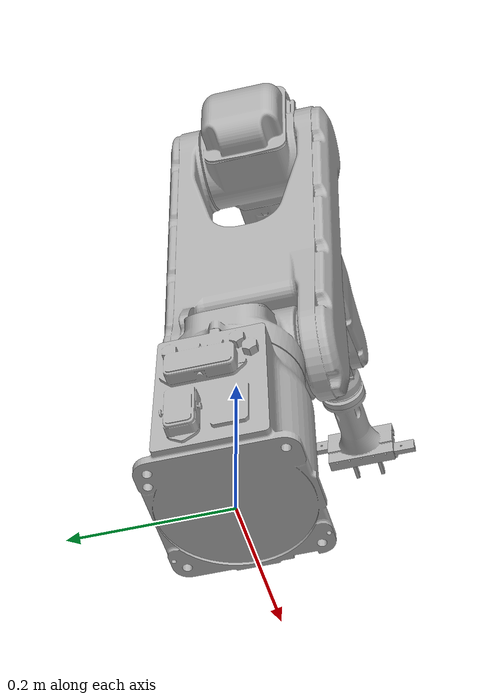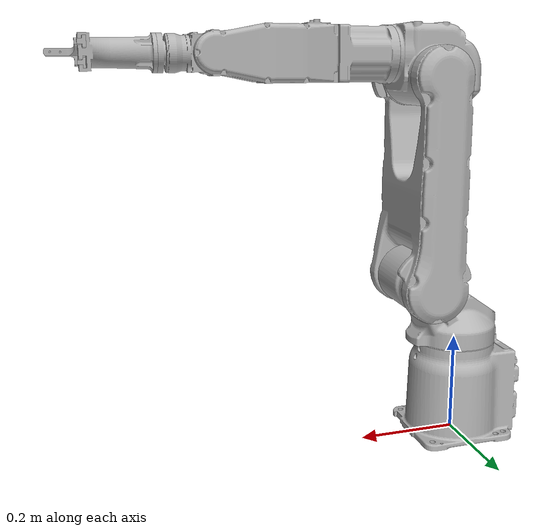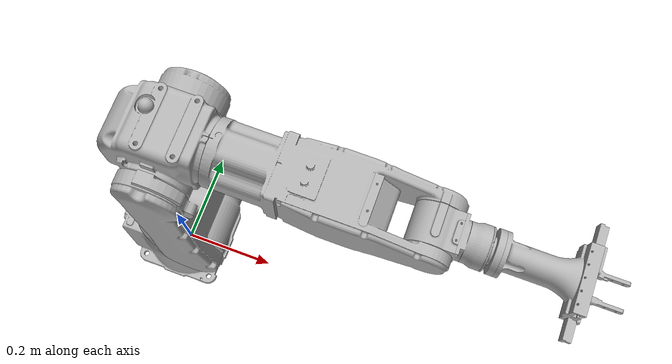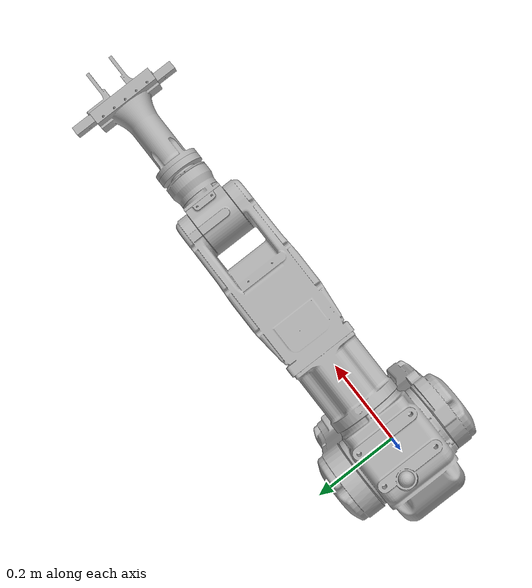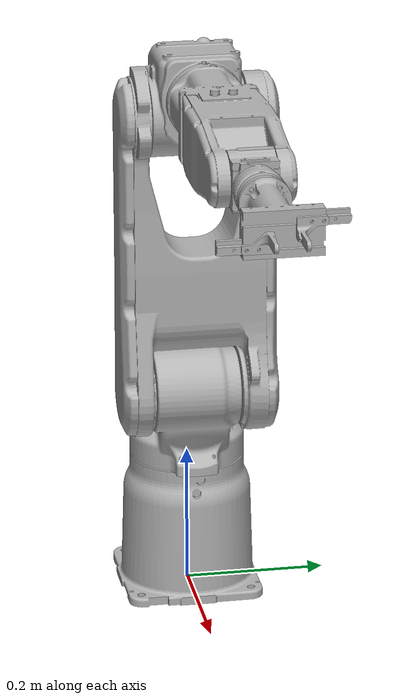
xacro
<?xml version="1.0" ?>

<robot name="mh5lsii" xmlns:xacro="http://www.ros.org/wiki/xacro">

<xacro:include filename="$(find mh5lsii_description)/urdf/materials.xacro" />
<xacro:include filename="$(find mh5lsii_description)/urdf/mh5lsii.trans" />
<xacro:include filename="$(find mh5lsii_description)/urdf/mh5lsii.gazebo" />
<link name="base_link">
  <inertial>
    <origin xyz="-0.011090103739351596 0.00022797791882665918 0.10315518556214519" rpy="0 0 0"/>
    <mass value="6.766314683371327"/>
    <inertia ixx="0.039535" iyy="0.044975" izz="0.033128" ixy="0.000175" iyz="4.1e-05" ixz="-0.000486"/>
  </inertial>
  <visual>
    <origin xyz="0 0 0" rpy="0 0 0"/>
    <geometry>
      <mesh filename="package://mh5lsii_description/meshes/base_link.stl" scale="0.001 0.001 0.001"/>
    </geometry>
    <material name="silver"/>
  </visual>
  <collision>
    <origin xyz="0 0 0" rpy="0 0 0"/>
    <geometry>
      <mesh filename="package://mh5lsii_description/meshes/base_link.stl" scale="0.001 0.001 0.001"/>
    </geometry>
  </collision>
</link>

<link name="link_01_1">
  <inertial>
    <origin xyz="0.049423257467588036 -0.00240150574806688 0.06287800300541616" rpy="0 0 0"/>
    <mass value="2.74595411805442"/>
    <inertia ixx="0.009639" iyy="0.014176" izz="0.011386" ixy="0.000288" iyz="0.000294" ixz="-0.004201"/>
  </inertial>
  <visual>
    <origin xyz="0.0 -0.0 -0.229" rpy="0 0 0"/>
    <geometry>
      <mesh filename="package://mh5lsii_description/meshes/link_01_1.stl" scale="0.001 0.001 0.001"/>
    </geometry>
    <material name="silver"/>
  </visual>
  <collision>
    <origin xyz="0.0 -0.0 -0.229" rpy="0 0 0"/>
    <geometry>
      <mesh filename="package://mh5lsii_description/meshes/link_01_1.stl" scale="0.001 0.001 0.001"/>
    </geometry>
  </collision>
</link>

<link name="link_02_1">
  <inertial>
    <origin xyz="-0.005331923635036859 0.06418219806904472 0.17365649623351526" rpy="0 0 0"/>
    <mass value="6.763318661710877"/>
    <inertia ixx="0.149826" iyy="0.116633" izz="0.044132" ixy="0.000123" iyz="0.001011" ixz="-4.7e-05"/>
  </inertial>
  <visual>
    <origin xyz="-0.088 0.0635 -0.33" rpy="0 0 0"/>
    <geometry>
      <mesh filename="package://mh5lsii_description/meshes/link_02_1.stl" scale="0.001 0.001 0.001"/>
    </geometry>
    <material name="silver"/>
  </visual>
  <collision>
    <origin xyz="-0.088 0.0635 -0.33" rpy="0 0 0"/>
    <geometry>
      <mesh filename="package://mh5lsii_description/meshes/link_02_1.stl" scale="0.001 0.001 0.001"/>
    </geometry>
  </collision>
</link>

<link name="link_03_1">
  <inertial>
    <origin xyz="-0.010417850763689798 -0.06566047170765882 0.019063299663247935" rpy="0 0 0"/>
    <mass value="2.681871492262554"/>
    <inertia ixx="0.007254" iyy="0.009118" izz="0.008082" ixy="3.3e-05" iyz="-3.4e-05" ixz="-0.000788"/>
  </inertial>
  <visual>
    <origin xyz="-0.088 -0.0645 -0.73" rpy="0 0 0"/>
    <geometry>
      <mesh filename="package://mh5lsii_description/meshes/link_03_1.stl" scale="0.001 0.001 0.001"/>
    </geometry>
    <material name="silver"/>
  </visual>
  <collision>
    <origin xyz="-0.088 -0.0645 -0.73" rpy="0 0 0"/>
    <geometry>
      <mesh filename="package://mh5lsii_description/meshes/link_03_1.stl" scale="0.001 0.001 0.001"/>
    </geometry>
  </collision>
</link>

<link name="link_04_1">
  <inertial>
    <origin xyz="0.16098681758129338 -6.09203263927216e-06 0.00017633845563469475" rpy="0 0 0"/>
    <mass value="3.0345870906853607"/>
    <inertia ixx="0.005212" iyy="0.026116" izz="0.027027" ixy="-1.2e-05" iyz="-8e-06" ixz="1e-06"/>
  </inertial>
  <visual>
    <origin xyz="-0.1585 0.0 -0.77" rpy="0 0 0"/>
    <geometry>
      <mesh filename="package://mh5lsii_description/meshes/link_04_1.stl" scale="0.001 0.001 0.001"/>
    </geometry>
    <material name="silver"/>
  </visual>
  <collision>
    <origin xyz="-0.1585 0.0 -0.77" rpy="0 0 0"/>
    <geometry>
      <mesh filename="package://mh5lsii_description/meshes/link_04_1.stl" scale="0.001 0.001 0.001"/>
    </geometry>
  </collision>
</link>

<link name="link_05_1">
  <inertial>
    <origin xyz="0.015586640791618978 -0.030964064569894863 -0.00016446853214213686" rpy="0 0 0"/>
    <mass value="0.37951137478480873"/>
    <inertia ixx="0.00025" iyy="0.000452" izz="0.000432" ixy="0.0" iyz="1e-06" ixz="-1e-06"/>
  </inertial>
  <visual>
    <origin xyz="-0.493 -0.030999 -0.770249" rpy="0 0 0"/>
    <geometry>
      <mesh filename="package://mh5lsii_description/meshes/link_05_1.stl" scale="0.001 0.001 0.001"/>
    </geometry>
    <material name="silver"/>
  </visual>
  <collision>
    <origin xyz="-0.493 -0.030999 -0.770249" rpy="0 0 0"/>
    <geometry>
      <mesh filename="package://mh5lsii_description/meshes/link_05_1.stl" scale="0.001 0.001 0.001"/>
    </geometry>
  </collision>
</link>

<link name="link_06_1">
  <inertial>
    <origin xyz="0.01450144512471463 -4.057700439152878e-07 4.975171074528273e-05" rpy="0 0 0"/>
    <mass value="0.04311612297123868"/>
    <inertia ixx="1.1e-05" iyy="8e-06" izz="8e-06" ixy="0.0" iyz="-0.0" ixz="-0.0"/>
  </inertial>
  <visual>
    <origin xyz="-0.5435 0.0 -0.77" rpy="0 0 0"/>
    <geometry>
      <mesh filename="package://mh5lsii_description/meshes/link_06_1.stl" scale="0.001 0.001 0.001"/>
    </geometry>
    <material name="silver"/>
  </visual>
  <collision>
    <origin xyz="-0.5435 0.0 -0.77" rpy="0 0 0"/>
    <geometry>
      <mesh filename="package://mh5lsii_description/meshes/link_06_1.stl" scale="0.001 0.001 0.001"/>
    </geometry>
  </collision>
</link>

<link name="acople_1">
  <inertial>
    <origin xyz="0.015817002581675066 6.69007210366947e-07 -1.1276651433744789e-06" rpy="0 0 0"/>
    <mass value="0.055705114869669475"/>
    <inertia ixx="2.8e-05" iyy="1.5e-05" izz="1.5e-05" ixy="0.0" iyz="0.0" ixz="-0.0"/>
  </inertial>
  <visual>
    <origin xyz="-0.567 0.0 -0.77" rpy="0 0 0"/>
    <geometry>
      <mesh filename="package://mh5lsii_description/meshes/acople_1.stl" scale="0.001 0.001 0.001"/>
    </geometry>
    <material name="silver"/>
  </visual>
  <collision>
    <origin xyz="-0.567 0.0 -0.77" rpy="0 0 0"/>
    <geometry>
      <mesh filename="package://mh5lsii_description/meshes/acople_1.stl" scale="0.001 0.001 0.001"/>
    </geometry>
  </collision>
</link>

<link name="ob7_2_1">
  <inertial>
    <origin xyz="0.07017691342571097 1.194951294536395e-07 -3.4271062391288964e-06" rpy="0 0 0"/>
    <mass value="0.3085040405049697"/>
    <inertia ixx="0.000178" iyy="0.00053" izz="0.000577" ixy="-0.0" iyz="-0.0" ixz="0.0"/>
  </inertial>
  <visual>
    <origin xyz="-0.590997 0.0 -0.77" rpy="0 0 0"/>
    <geometry>
      <mesh filename="package://mh5lsii_description/meshes/ob7_2_1.stl" scale="0.001 0.001 0.001"/>
    </geometry>
    <material name="silver"/>
  </visual>
  <collision>
    <origin xyz="-0.590997 0.0 -0.77" rpy="0 0 0"/>
    <geometry>
      <mesh filename="package://mh5lsii_description/meshes/ob7_2_1.stl" scale="0.001 0.001 0.001"/>
    </geometry>
  </collision>
</link>

<link name="ob7_slider_d_1">
  <inertial>
    <origin xyz="-0.04811466000799036 -0.668746099494158 -0.7750009636934996" rpy="0 0 0"/>
    <mass value="0.009612890331661439"/>
    <inertia ixx="3e-06" iyy="0.0" izz="3e-06" ixy="-0.0" iyz="-0.0" ixz="-0.0"/>
  </inertial>
  <visual>
    <origin xyz="-0.756306 -0.645957 -1.560159" rpy="0 0 0"/>
    <geometry>
      <mesh filename="package://mh5lsii_description/meshes/ob7_slider_d_1.stl" scale="0.001 0.001 0.001"/>
    </geometry>
    <material name="silver"/>
  </visual>
  <collision>
    <origin xyz="-0.756306 -0.645957 -1.560159" rpy="0 0 0"/>
    <geometry>
      <mesh filename="package://mh5lsii_description/meshes/ob7_slider_d_1.stl" scale="0.001 0.001 0.001"/>
    </geometry>
  </collision>
</link>

<link name="ob7_slider_i_1">
  <inertial>
    <origin xyz="0.053043310821363376 -0.6234089045465261 -0.7754502350968029" rpy="0 0 0"/>
    <mass value="0.009612890331661439"/>
    <inertia ixx="3e-06" iyy="0.0" izz="3e-06" ixy="0.0" iyz="-0.0" ixz="0.0"/>
  </inertial>
  <visual>
    <origin xyz="-0.655148 -0.646198 -1.530291" rpy="0 0 0"/>
    <geometry>
      <mesh filename="package://mh5lsii_description/meshes/ob7_slider_i_1.stl" scale="0.001 0.001 0.001"/>
    </geometry>
    <material name="silver"/>
  </visual>
  <collision>
    <origin xyz="-0.655148 -0.646198 -1.530291" rpy="0 0 0"/>
    <geometry>
      <mesh filename="package://mh5lsii_description/meshes/ob7_slider_i_1.stl" scale="0.001 0.001 0.001"/>
    </geometry>
  </collision>
</link>

<link name="ob7_finger_d_1">
  <inertial>
    <origin xyz="0.01307070022070067 -0.007894728170446508 -0.01047603512321127" rpy="0 0 0"/>
    <mass value="0.0070860389185776985"/>
    <inertia ixx="1e-06" iyy="2e-06" izz="2e-06" ixy="0.0" iyz="-0.0" ixz="0.0"/>
  </inertial>
  <visual>
    <origin xyz="-0.716674 0.045499 -0.784975" rpy="0 0 0"/>
    <geometry>
      <mesh filename="package://mh5lsii_description/meshes/ob7_finger_d_1.stl" scale="0.001 0.001 0.001"/>
    </geometry>
    <material name="silver"/>
  </visual>
  <collision>
    <origin xyz="-0.716674 0.045499 -0.784975" rpy="0 0 0"/>
    <geometry>
      <mesh filename="package://mh5lsii_description/meshes/ob7_finger_d_1.stl" scale="0.001 0.001 0.001"/>
    </geometry>
  </collision>
</link>

<link name="ob7_finger_i_1">
  <inertial>
    <origin xyz="0.013070691827939629 0.007894724006787111 0.010475794671614747" rpy="0 0 0"/>
    <mass value="0.0070860389185776985"/>
    <inertia ixx="1e-06" iyy="2e-06" izz="2e-06" ixy="-0.0" iyz="-0.0" ixz="-0.0"/>
  </inertial>
  <visual>
    <origin xyz="-0.716674 -0.045499 -0.755024" rpy="0 0 0"/>
    <geometry>
      <mesh filename="package://mh5lsii_description/meshes/ob7_finger_i_1.stl" scale="0.001 0.001 0.001"/>
    </geometry>
    <material name="silver"/>
  </visual>
  <collision>
    <origin xyz="-0.716674 -0.045499 -0.755024" rpy="0 0 0"/>
    <geometry>
      <mesh filename="package://mh5lsii_description/meshes/ob7_finger_i_1.stl" scale="0.001 0.001 0.001"/>
    </geometry>
  </collision>
</link>

<joint name="rev1" type="revolute">
  <origin xyz="0.0 0.0 0.229" rpy="0 0 0"/>
  <parent link="base_link"/>
  <child link="link_01_1"/>
  <axis xyz="1e-06 -0.0 1.0"/>
  <limit upper="2.96706" lower="-2.96706" effort="100" velocity="100"/>
</joint>

<joint name="rev2" type="revolute">
  <origin xyz="0.088 -0.0635 0.101" rpy="0 0 0"/>
  <parent link="link_01_1"/>
  <child link="link_02_1"/>
  <axis xyz="-0.0 -1.0 -0.0"/>
  <limit upper="1.134464" lower="-2.617994" effort="100" velocity="100"/>
</joint>

<joint name="rev3" type="revolute">
  <origin xyz="0.0 0.128 0.4" rpy="0 0 0"/>
  <parent link="link_02_1"/>
  <child link="link_03_1"/>
  <axis xyz="-0.0 -1.0 0.0"/>
  <limit upper="3.316126" lower="-0.558505" effort="100" velocity="100"/>
</joint>

<joint name="rev4" type="continuous">
  <origin xyz="0.0705 -0.0645 0.04" rpy="0 0 0"/>
  <parent link="link_03_1"/>
  <child link="link_04_1"/>
  <axis xyz="1.0 -0.0 -1e-06"/>
</joint>

<joint name="rev5" type="revolute">
  <origin xyz="0.3345 0.030999 0.000249" rpy="0 0 0"/>
  <parent link="link_04_1"/>
  <child link="link_05_1"/>
  <axis xyz="-0.0 -0.999968 -0.00805"/>
  <limit upper="2.356194" lower="-2.356194" effort="100" velocity="100"/>
</joint>

<joint name="rev6" type="continuous">
  <origin xyz="0.0505 -0.030999 -0.000249" rpy="0 0 0"/>
  <parent link="link_05_1"/>
  <child link="link_06_1"/>
  <axis xyz="1.0 -0.0 -1e-06"/>
</joint>

<joint name="rig7" type="fixed">
  <origin xyz="0.0235 0.0 0.0" rpy="0 0 0"/>
  <parent link="link_06_1"/>
  <child link="acople_1"/>
</joint>

<joint name="rig8" type="fixed">
  <origin xyz="0.023997 0.0 0.0" rpy="0 0 0"/>
  <parent link="acople_1"/>
  <child link="ob7_2_1"/>
</joint>

<joint name="slider9" type="prismatic">
  <origin xyz="0.165309 0.645957 0.790159" rpy="0 0 0"/>
  <parent link="ob7_2_1"/>
  <child link="ob7_slider_d_1"/>
  <axis xyz="-0.0 -0.999968 -0.00805"/>
  <limit upper="-0.055" lower="-0.1" effort="100" velocity="100"/>
</joint>

<joint name="slider10" type="prismatic">
  <origin xyz="0.064151 0.646198 0.760291" rpy="0 0 0"/>
  <parent link="ob7_2_1"/>
  <child link="ob7_slider_i_1"/>
  <axis xyz="0.0 0.999968 0.00805"/>
  <limit upper="-0.055" lower="-0.1" effort="100" velocity="100"/>
</joint>

<joint name="rig11" type="fixed">
  <origin xyz="-0.039632 -0.691456 -0.775184" rpy="0 0 0"/>
  <parent link="ob7_slider_d_1"/>
  <child link="ob7_finger_d_1"/>
</joint>

<joint name="rig12" type="fixed">
  <origin xyz="0.061526 -0.600699 -0.775267" rpy="0 0 0"/>
  <parent link="ob7_slider_i_1"/>
  <child link="ob7_finger_i_1"/>
</joint>

</robot>

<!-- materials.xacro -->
<robot name="mh5lsii" xmlns:xacro="http://www.ros.org/wiki/xacro" >

<material name="silver">
  <color rgba="0.700 0.700 0.700 1.000"/>
</material>

</robot>

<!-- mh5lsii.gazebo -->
<robot name="mh5lsii" xmlns:xacro="http://www.ros.org/wiki/xacro" >

<xacro:property name="body_color" value="Gazebo/Silver" />

<gazebo>
  <plugin name="control" filename="libgazebo_ros_control.so"/>
</gazebo>
<gazebo reference="base_link">
  <material>${body_color}</material>
  <mu1>0.2</mu1>
  <mu2>0.2</mu2>
  <selfCollide>true</selfCollide>
  <gravity>true</gravity>
</gazebo>

<gazebo reference="link_01_1">
  <material>${body_color}</material>
  <mu1>0.2</mu1>
  <mu2>0.2</mu2>
  <selfCollide>true</selfCollide>
</gazebo>

<gazebo reference="link_02_1">
  <material>${body_color}</material>
  <mu1>0.2</mu1>
  <mu2>0.2</mu2>
  <selfCollide>true</selfCollide>
</gazebo>

<gazebo reference="link_03_1">
  <material>${body_color}</material>
  <mu1>0.2</mu1>
  <mu2>0.2</mu2>
  <selfCollide>true</selfCollide>
</gazebo>

<gazebo reference="link_04_1">
  <material>${body_color}</material>
  <mu1>0.2</mu1>
  <mu2>0.2</mu2>
  <selfCollide>true</selfCollide>
</gazebo>

<gazebo reference="link_05_1">
  <material>${body_color}</material>
  <mu1>0.2</mu1>
  <mu2>0.2</mu2>
  <selfCollide>true</selfCollide>
</gazebo>

<gazebo reference="link_06_1">
  <material>${body_color}</material>
  <mu1>0.2</mu1>
  <mu2>0.2</mu2>
  <selfCollide>true</selfCollide>
</gazebo>

<gazebo reference="acople_1">
  <material>${body_color}</material>
  <mu1>0.2</mu1>
  <mu2>0.2</mu2>
  <selfCollide>true</selfCollide>
</gazebo>

<gazebo reference="ob7_2_1">
  <material>${body_color}</material>
  <mu1>0.2</mu1>
  <mu2>0.2</mu2>
  <selfCollide>true</selfCollide>
</gazebo>

<gazebo reference="ob7_slider_d_1">
  <material>${body_color}</material>
  <mu1>0.2</mu1>
  <mu2>0.2</mu2>
  <selfCollide>true</selfCollide>
</gazebo>

<gazebo reference="ob7_slider_i_1">
  <material>${body_color}</material>
  <mu1>0.2</mu1>
  <mu2>0.2</mu2>
  <selfCollide>true</selfCollide>
</gazebo>

<gazebo reference="ob7_finger_d_1">
  <material>${body_color}</material>
  <mu1>0.2</mu1>
  <mu2>0.2</mu2>
  <selfCollide>true</selfCollide>
</gazebo>

<gazebo reference="ob7_finger_i_1">
  <material>${body_color}</material>
  <mu1>0.2</mu1>
  <mu2>0.2</mu2>
  <selfCollide>true</selfCollide>
</gazebo>

</robot>
